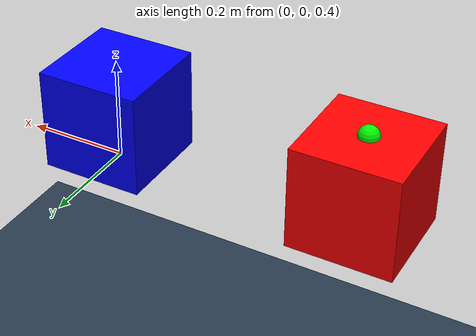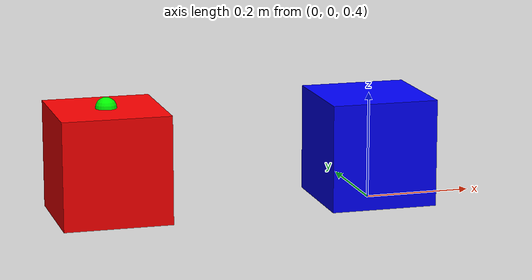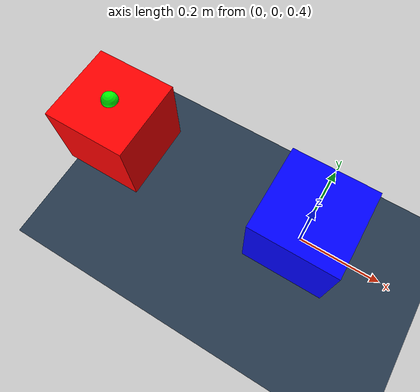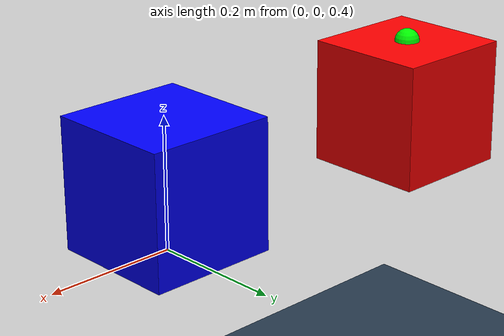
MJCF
<mujoco model="two_box_full">

    <option gravity="0 0 -9.81"/>

    <asset>
        <!-- common/assets.xml -->
        <texture name="plane" type="2d" builtin="checker"
                 rgb1=".2 .3 .4" rgb2=".1 0.15 0.2" width="256" height="256"
                 mark="cross" markrgb=".8 .8 .8" />
        <material name="plane" reflectance="0.3" texture="plane"
                  texrepeat="1 1" texuniform="true" />

        <material name="black" rgba=".2 .2 .2 1"/>
        <material name="white" rgba="1 1 1 1"/>
        <material name="red" rgba="1 0.072272 0.039546 1"/>
        <material name="gray" rgba="0.863156 0.863156 0.863157 1"/>
        <material name="button_green" rgba="0.102241 0.571125 0.102242 1"/>
        <material name="button_red" rgba="0.520996 0.008023 0.013702 1"/>
        <material name="button_blue" rgba="0.024157 0.445201 0.737911 1"/>
        <material name="off_white" rgba="0.901961 0.921569 0.929412 1"/>

        <!-- two_box/assets.xml -->
        <material name="box1_red" rgba="1 0 0 1"/>
        <material name="box2_blue" rgba="0 0 1 1"/>
    </asset>

    <worldbody>
        <!-- common/scene.xml -->
        <light directional="true" diffuse=".2 .2 .2" specular="0 0 0"
               pos="0 1 5" dir="0 -1 -1" castshadow="false"/>
        <light directional="false" diffuse=".8 .8 .8" specular="0.3 0.3 0.3"
               pos="0 -1 4" dir="0 0 -1" />
        <light directional="true" diffuse="0 0 0" specular=".7 .7 .7"
               pos="0 3 3" dir="0 -3 -3" />
        <geom name="floor" pos="0 0 -.0" group="1" size="0 0 .1"
              type="plane" material="plane" condim="3" />

        <!-- two_box/two_box_urdf.xml -->
        <body name="box1" pos="-0.5 0 0.5">
            <joint name="joint1" pos = "0 0 0" type="hinge" group="3"/>
            <!-- free로 바꾸면 자유낙하 - 현재는 z축 회전만 적용이라 낙하 x-->
            <geom type="box" size="0.1 0.1 0.1" material="box1_red"/>
            <site name="box1_site" pos="0 0 0.1" size ="0.02" type="sphere" rgba="0 1 0 1" group="2"/>
        </body>

        <body name="box2" pos="0 0 0.5">
            <joint name="slide_x" pos = "0 0 0" type="slide" axis="0 0 1"/>
            <joint name="slide_y" type="slide" axis="0 1 0"/>
            <geom type="box" size="0.1 0.1 0.1" material="box2_blue"/>
            <site name="box2_site" pos="0 0 0.1" size="0.02" type="sphere" rgba="0 0 1 1" group="3"/>
        </body>
    </worldbody>

</mujoco>
